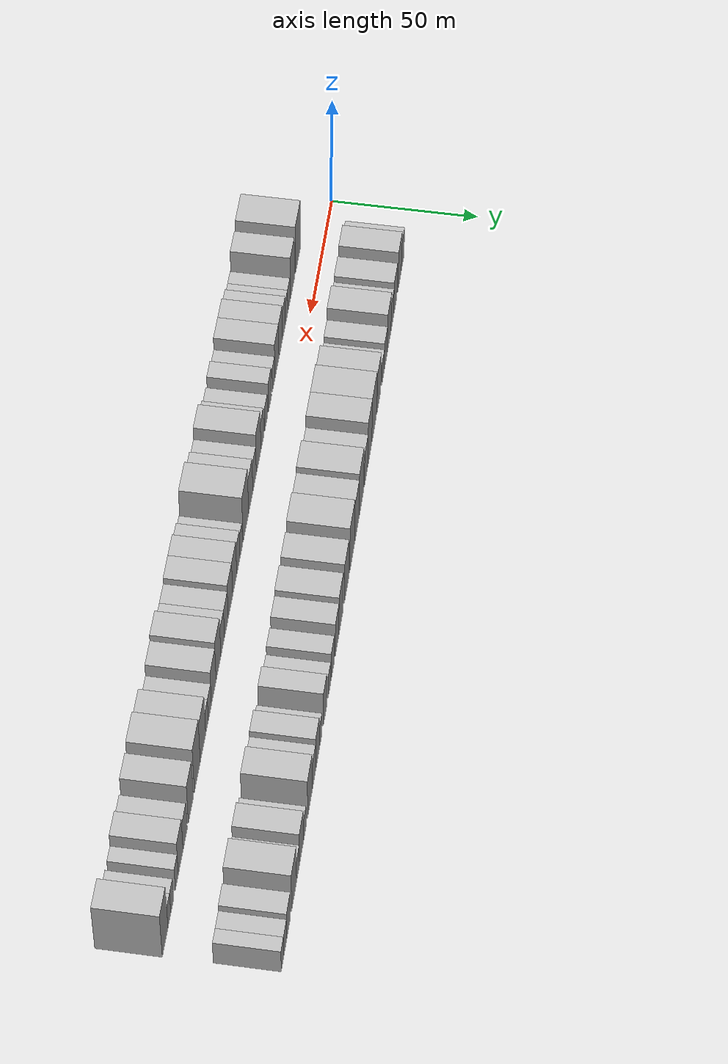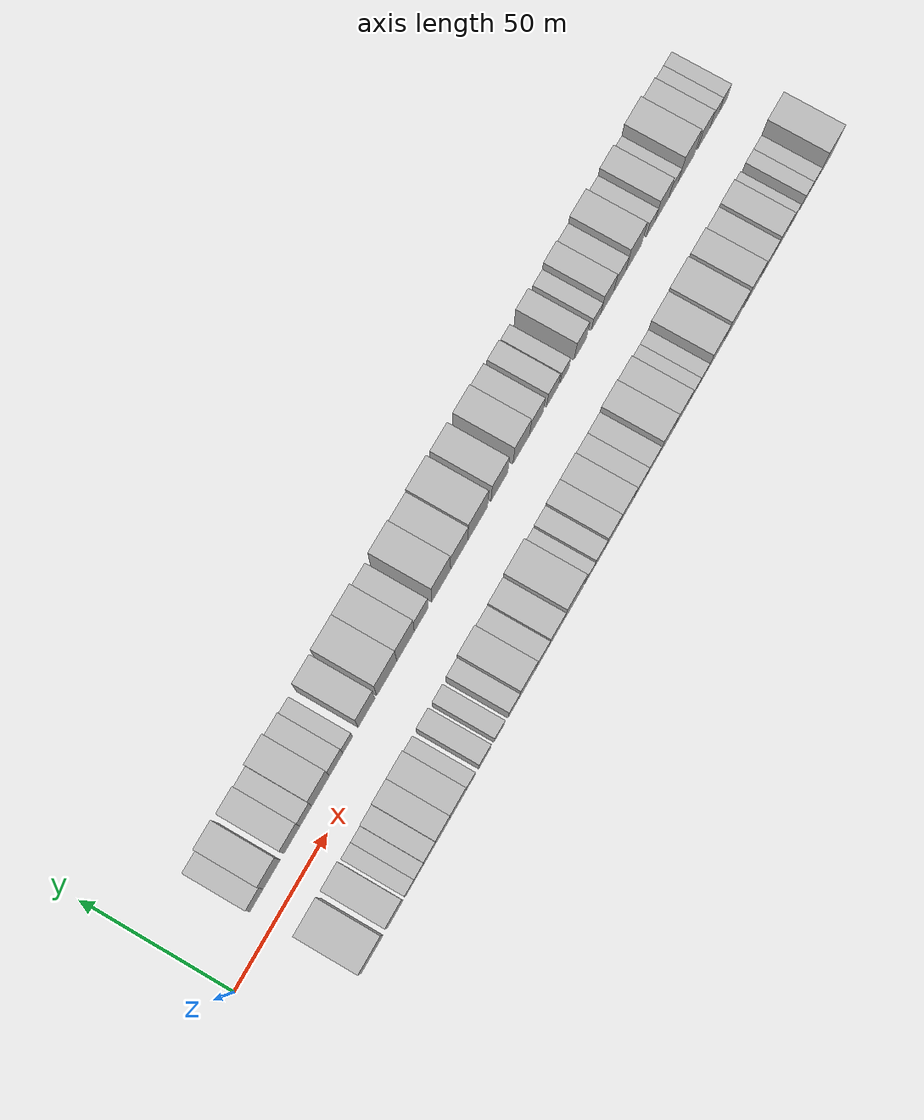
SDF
<sdf version="1.6">
 <world name="default">
  <scene>
   <sky><clouds><speed>12</speed></clouds></sky>
   <ambient>0.4 0.4 0.4 1</ambient>
   <background>0.7 0.7 0.7 1</background>
   <shadows>1</shadows>
  </scene>
  <gravity>0 0 -9.8066</gravity>
  <magnetic_field>6e-06 2.3e-05 -4.2e-05</magnetic_field>
  <physics default="0" name="default_physics" type="ode">
   <ode>
    <solver>
     <type>quick</type>
     <iters>10</iters>
     <sor>1.0</sor>
     <use_dynamic_moi_rescaling>0</use_dynamic_moi_rescaling>
    </solver>
    <constraints>
     <cfm>0</cfm>
     <erp>0.2</erp>
     <contact_max_correcting_vel>100</contact_max_correcting_vel>
     <contact_surface_layer>0.001</contact_surface_layer>
    </constraints>
   </ode>
   <max_step_size>0.004</max_step_size>
   <real_time_factor>1</real_time_factor>
   <real_time_update_rate>250</real_time_update_rate>
  </physics>
  <light name="sun" type="directional">
   <pose>0 0 10 0 0 0</pose>
   <diffuse>0.8 0.8 0.8 1</diffuse>
   <specular>0.2 0.2 0.2 1</specular>
   <attenuation>
    <range>1000</range>
    <constant>0.9</constant>
    <linear>0.01</linear>
    <quadratic>0.001</quadratic>
   </attenuation>
   <direction>-0.5 0.1 -0.9</direction>
  </light>
  <model name="building_1">
   <static>1</static>
   <pose>24.5312 17.5000 0 0.000000 0.000000 1.570796</pose>
   <link name="link">
    <pose>0 0 7.50 0 0 0</pose>
    <collision name="collision"><geometry><box><size>20.0000 7.0624 15.0000</size></box></geometry></collision>
    <visual name="visual">
     <cast_shadows>0</cast_shadows>
     <geometry><box><size>20.0000 7.0624 15.0000</size></box></geometry>
     <material>
      <script>
       <uri>model://HANNAS_wall/materials/scripts</uri>
       <uri>model://HANNAS_wall/materials/textures</uri>
       <name>vrc/HANNAS_wall</name>
      </script>
     </material>
    </visual>
   </link>
  </model>
  <model name="building_2">
   <static>1</static>
   <pose>32.6191 17.5000 0 0.000000 0.000000 1.570796</pose>
   <link name="link">
    <pose>0 0 10.50 0 0 0</pose>
    <collision name="collision"><geometry><box><size>20.0000 9.1133 21.0000</size></box></geometry></collision>
    <visual name="visual">
     <cast_shadows>0</cast_shadows>
     <geometry><box><size>20.0000 9.1133 21.0000</size></box></geometry>
     <material>
      <script>
       <uri>model://HANNAS_wall/materials/scripts</uri>
       <uri>model://HANNAS_wall/materials/textures</uri>
       <name>vrc/HANNAS_wall</name>
      </script>
     </material>
    </visual>
   </link>
  </model>
  <model name="building_3">
   <static>1</static>
   <pose>43.4742 17.5000 0 0.000000 0.000000 1.570796</pose>
   <link name="link">
    <pose>0 0 9.00 0 0 0</pose>
    <collision name="collision"><geometry><box><size>20.0000 8.5970 18.0000</size></box></geometry></collision>
    <visual name="visual">
     <cast_shadows>0</cast_shadows>
     <geometry><box><size>20.0000 8.5970 18.0000</size></box></geometry>
     <material>
      <script>
       <uri>model://HANNAS_wall/materials/scripts</uri>
       <uri>model://HANNAS_wall/materials/textures</uri>
       <name>vrc/HANNAS_wall</name>
      </script>
     </material>
    </visual>
   </link>
  </model>
  <model name="building_4">
   <static>1</static>
   <pose>51.0130 17.5000 0 0.000000 0.000000 1.570796</pose>
   <link name="link">
    <pose>0 0 7.50 0 0 0</pose>
    <collision name="collision"><geometry><box><size>20.0000 6.4806 15.0000</size></box></geometry></collision>
    <visual name="visual">
     <cast_shadows>0</cast_shadows>
     <geometry><box><size>20.0000 6.4806 15.0000</size></box></geometry>
     <material>
      <script>
       <uri>model://HANNAS_wall/materials/scripts</uri>
       <uri>model://HANNAS_wall/materials/textures</uri>
       <name>vrc/HANNAS_wall</name>
      </script>
     </material>
    </visual>
   </link>
  </model>
  <model name="building_5">
   <static>1</static>
   <pose>59.0527 17.5000 0 0.000000 0.000000 1.570796</pose>
   <link name="link">
    <pose>0 0 10.50 0 0 0</pose>
    <collision name="collision"><geometry><box><size>20.0000 9.5987 21.0000</size></box></geometry></collision>
    <visual name="visual">
     <cast_shadows>0</cast_shadows>
     <geometry><box><size>20.0000 9.5987 21.0000</size></box></geometry>
     <material>
      <script>
       <uri>model://HANNAS_wall/materials/scripts</uri>
       <uri>model://HANNAS_wall/materials/textures</uri>
       <name>vrc/HANNAS_wall</name>
      </script>
     </material>
    </visual>
   </link>
  </model>
  <model name="building_6">
   <static>1</static>
   <pose>67.4788 17.5000 0 0.000000 0.000000 1.570796</pose>
   <link name="link">
    <pose>0 0 7.50 0 0 0</pose>
    <collision name="collision"><geometry><box><size>20.0000 7.2534 15.0000</size></box></geometry></collision>
    <visual name="visual">
     <cast_shadows>0</cast_shadows>
     <geometry><box><size>20.0000 7.2534 15.0000</size></box></geometry>
     <material>
      <script>
       <uri>model://HANNAS_wall/materials/scripts</uri>
       <uri>model://HANNAS_wall/materials/textures</uri>
       <name>vrc/HANNAS_wall</name>
      </script>
     </material>
    </visual>
   </link>
  </model>
  <model name="building_7">
   <static>1</static>
   <pose>73.7996 17.5000 0 0.000000 0.000000 1.570796</pose>
   <link name="link">
    <pose>0 0 6.00 0 0 0</pose>
    <collision name="collision"><geometry><box><size>20.0000 5.3883 12.0000</size></box></geometry></collision>
    <visual name="visual">
     <cast_shadows>0</cast_shadows>
     <geometry><box><size>20.0000 5.3883 12.0000</size></box></geometry>
     <material>
      <script>
       <uri>model://HANNAS_wall/materials/scripts</uri>
       <uri>model://HANNAS_wall/materials/textures</uri>
       <name>vrc/HANNAS_wall</name>
      </script>
     </material>
    </visual>
   </link>
  </model>
  <model name="building_8">
   <static>1</static>
   <pose>84.1471 17.5000 0 0.000000 0.000000 1.570796</pose>
   <link name="link">
    <pose>0 0 10.50 0 0 0</pose>
    <collision name="collision"><geometry><box><size>20.0000 9.3068 21.0000</size></box></geometry></collision>
    <visual name="visual">
     <cast_shadows>0</cast_shadows>
     <geometry><box><size>20.0000 9.3068 21.0000</size></box></geometry>
     <material>
      <script>
       <uri>model://HANNAS_wall/materials/scripts</uri>
       <uri>model://HANNAS_wall/materials/textures</uri>
       <name>vrc/HANNAS_wall</name>
      </script>
     </material>
    </visual>
   </link>
  </model>
  <model name="building_9">
   <static>1</static>
   <pose>95.3636 17.5000 0 0.000000 0.000000 1.570796</pose>
   <link name="link">
    <pose>0 0 12.00 0 0 0</pose>
    <collision name="collision"><geometry><box><size>20.0000 11.1262 24.0000</size></box></geometry></collision>
    <visual name="visual">
     <cast_shadows>0</cast_shadows>
     <geometry><box><size>20.0000 11.1262 24.0000</size></box></geometry>
     <material>
      <script>
       <uri>model://HANNAS_wall/materials/scripts</uri>
       <uri>model://HANNAS_wall/materials/textures</uri>
       <name>vrc/HANNAS_wall</name>
      </script>
     </material>
    </visual>
   </link>
  </model>
  <model name="building_10">
   <static>1</static>
   <pose>105.8117 17.5000 0 0.000000 0.000000 1.570796</pose>
   <link name="link">
    <pose>0 0 12.00 0 0 0</pose>
    <collision name="collision"><geometry><box><size>20.0000 9.7699 24.0000</size></box></geometry></collision>
    <visual name="visual">
     <cast_shadows>0</cast_shadows>
     <geometry><box><size>20.0000 9.7699 24.0000</size></box></geometry>
     <material>
      <script>
       <uri>model://HANNAS_wall/materials/scripts</uri>
       <uri>model://HANNAS_wall/materials/textures</uri>
       <name>vrc/HANNAS_wall</name>
      </script>
     </material>
    </visual>
   </link>
  </model>
  <model name="building_11">
   <static>1</static>
   <pose>114.6032 17.5000 0 0.000000 0.000000 1.570796</pose>
   <link name="link">
    <pose>0 0 9.00 0 0 0</pose>
    <collision name="collision"><geometry><box><size>20.0000 7.8132 18.0000</size></box></geometry></collision>
    <visual name="visual">
     <cast_shadows>0</cast_shadows>
     <geometry><box><size>20.0000 7.8132 18.0000</size></box></geometry>
     <material>
      <script>
       <uri>model://HANNAS_wall/materials/scripts</uri>
       <uri>model://HANNAS_wall/materials/textures</uri>
       <name>vrc/HANNAS_wall</name>
      </script>
     </material>
    </visual>
   </link>
  </model>
  <model name="building_12">
   <static>1</static>
   <pose>125.7846 17.5000 0 0.000000 0.000000 1.570796</pose>
   <link name="link">
    <pose>0 0 12.00 0 0 0</pose>
    <collision name="collision"><geometry><box><size>20.0000 10.5496 24.0000</size></box></geometry></collision>
    <visual name="visual">
     <cast_shadows>0</cast_shadows>
     <geometry><box><size>20.0000 10.5496 24.0000</size></box></geometry>
     <material>
      <script>
       <uri>model://HANNAS_wall/materials/scripts</uri>
       <uri>model://HANNAS_wall/materials/textures</uri>
       <name>vrc/HANNAS_wall</name>
      </script>
     </material>
    </visual>
   </link>
  </model>
  <model name="building_13">
   <static>1</static>
   <pose>136.0010 17.5000 0 0.000000 0.000000 1.570796</pose>
   <link name="link">
    <pose>0 0 10.50 0 0 0</pose>
    <collision name="collision"><geometry><box><size>20.0000 9.8832 21.0000</size></box></geometry></collision>
    <visual name="visual">
     <cast_shadows>0</cast_shadows>
     <geometry><box><size>20.0000 9.8832 21.0000</size></box></geometry>
     <material>
      <script>
       <uri>model://HANNAS_wall/materials/scripts</uri>
       <uri>model://HANNAS_wall/materials/textures</uri>
       <name>vrc/HANNAS_wall</name>
      </script>
     </material>
    </visual>
   </link>
  </model>
  <model name="building_14">
   <static>1</static>
   <pose>146.5517 17.5000 0 0.000000 0.000000 1.570796</pose>
   <link name="link">
    <pose>0 0 12.00 0 0 0</pose>
    <collision name="collision"><geometry><box><size>20.0000 11.2180 24.0000</size></box></geometry></collision>
    <visual name="visual">
     <cast_shadows>0</cast_shadows>
     <geometry><box><size>20.0000 11.2180 24.0000</size></box></geometry>
     <material>
      <script>
       <uri>model://HANNAS_wall/materials/scripts</uri>
       <uri>model://HANNAS_wall/materials/textures</uri>
       <name>vrc/HANNAS_wall</name>
      </script>
     </material>
    </visual>
   </link>
  </model>
  <model name="building_15">
   <static>1</static>
   <pose>158.9572 17.5000 0 0.000000 0.000000 1.570796</pose>
   <link name="link">
    <pose>0 0 10.50 0 0 0</pose>
    <collision name="collision"><geometry><box><size>20.0000 9.5930 21.0000</size></box></geometry></collision>
    <visual name="visual">
     <cast_shadows>0</cast_shadows>
     <geometry><box><size>20.0000 9.5930 21.0000</size></box></geometry>
     <material>
      <script>
       <uri>model://HANNAS_wall/materials/scripts</uri>
       <uri>model://HANNAS_wall/materials/textures</uri>
       <name>vrc/HANNAS_wall</name>
      </script>
     </material>
    </visual>
   </link>
  </model>
  <model name="building_16">
   <static>1</static>
   <pose>171.5148 17.5000 0 0.000000 0.000000 1.570796</pose>
   <link name="link">
    <pose>0 0 10.50 0 0 0</pose>
    <collision name="collision"><geometry><box><size>20.0000 9.5221 21.0000</size></box></geometry></collision>
    <visual name="visual">
     <cast_shadows>0</cast_shadows>
     <geometry><box><size>20.0000 9.5221 21.0000</size></box></geometry>
     <material>
      <script>
       <uri>model://HANNAS_wall/materials/scripts</uri>
       <uri>model://HANNAS_wall/materials/textures</uri>
       <name>vrc/HANNAS_wall</name>
      </script>
     </material>
    </visual>
   </link>
  </model>
  <model name="building_17">
   <static>1</static>
   <pose>180.2313 17.5000 0 0.000000 0.000000 1.570796</pose>
   <link name="link">
    <pose>0 0 9.00 0 0 0</pose>
    <collision name="collision"><geometry><box><size>20.0000 7.9109 18.0000</size></box></geometry></collision>
    <visual name="visual">
     <cast_shadows>0</cast_shadows>
     <geometry><box><size>20.0000 7.9109 18.0000</size></box></geometry>
     <material>
      <script>
       <uri>model://HANNAS_wall/materials/scripts</uri>
       <uri>model://HANNAS_wall/materials/textures</uri>
       <name>vrc/HANNAS_wall</name>
      </script>
     </material>
    </visual>
   </link>
  </model>
  <model name="building_18">
   <static>1</static>
   <pose>189.6379 17.5000 0 0.000000 0.000000 1.570796</pose>
   <link name="link">
    <pose>0 0 7.50 0 0 0</pose>
    <collision name="collision"><geometry><box><size>20.0000 6.9022 15.0000</size></box></geometry></collision>
    <visual name="visual">
     <cast_shadows>0</cast_shadows>
     <geometry><box><size>20.0000 6.9022 15.0000</size></box></geometry>
     <material>
      <script>
       <uri>model://HANNAS_wall/materials/scripts</uri>
       <uri>model://HANNAS_wall/materials/textures</uri>
       <name>vrc/HANNAS_wall</name>
      </script>
     </material>
    </visual>
   </link>
  </model>
  <model name="building_19">
   <static>1</static>
   <pose>196.7116 17.5000 0 0.000000 0.000000 1.570796</pose>
   <link name="link">
    <pose>0 0 6.00 0 0 0</pose>
    <collision name="collision"><geometry><box><size>20.0000 5.2452 12.0000</size></box></geometry></collision>
    <visual name="visual">
     <cast_shadows>0</cast_shadows>
     <geometry><box><size>20.0000 5.2452 12.0000</size></box></geometry>
     <material>
      <script>
       <uri>model://HANNAS_wall/materials/scripts</uri>
       <uri>model://HANNAS_wall/materials/textures</uri>
       <name>vrc/HANNAS_wall</name>
      </script>
     </material>
    </visual>
   </link>
  </model>
  <model name="building_20">
   <static>1</static>
   <pose>205.9429 17.5000 0 0.000000 0.000000 1.570796</pose>
   <link name="link">
    <pose>0 0 9.00 0 0 0</pose>
    <collision name="collision"><geometry><box><size>20.0000 7.2174 18.0000</size></box></geometry></collision>
    <visual name="visual">
     <cast_shadows>0</cast_shadows>
     <geometry><box><size>20.0000 7.2174 18.0000</size></box></geometry>
     <material>
      <script>
       <uri>model://HANNAS_wall/materials/scripts</uri>
       <uri>model://HANNAS_wall/materials/textures</uri>
       <name>vrc/HANNAS_wall</name>
      </script>
     </material>
    </visual>
   </link>
  </model>
  <model name="building_21">
   <static>1</static>
   <pose>215.3597 17.5000 0 0.000000 0.000000 1.570796</pose>
   <link name="link">
    <pose>0 0 6.00 0 0 0</pose>
    <collision name="collision"><geometry><box><size>20.0000 5.6162 12.0000</size></box></geometry></collision>
    <visual name="visual">
     <cast_shadows>0</cast_shadows>
     <geometry><box><size>20.0000 5.6162 12.0000</size></box></geometry>
     <material>
      <script>
       <uri>model://HANNAS_wall/materials/scripts</uri>
       <uri>model://HANNAS_wall/materials/textures</uri>
       <name>vrc/HANNAS_wall</name>
      </script>
     </material>
    </visual>
   </link>
  </model>
  <model name="building_22">
   <static>1</static>
   <pose>221.9842 17.5000 0 0.000000 0.000000 1.570796</pose>
   <link name="link">
    <pose>0 0 9.00 0 0 0</pose>
    <collision name="collision"><geometry><box><size>20.0000 7.6328 18.0000</size></box></geometry></collision>
    <visual name="visual">
     <cast_shadows>0</cast_shadows>
     <geometry><box><size>20.0000 7.6328 18.0000</size></box></geometry>
     <material>
      <script>
       <uri>model://HANNAS_wall/materials/scripts</uri>
       <uri>model://HANNAS_wall/materials/textures</uri>
       <name>vrc/HANNAS_wall</name>
      </script>
     </material>
    </visual>
   </link>
  </model>
  <model name="building_23">
   <static>1</static>
   <pose>229.3829 17.5000 0 0.000000 0.000000 1.570796</pose>
   <link name="link">
    <pose>0 0 7.50 0 0 0</pose>
    <collision name="collision"><geometry><box><size>20.0000 7.1647 15.0000</size></box></geometry></collision>
    <visual name="visual">
     <cast_shadows>0</cast_shadows>
     <geometry><box><size>20.0000 7.1647 15.0000</size></box></geometry>
     <material>
      <script>
       <uri>model://HANNAS_wall/materials/scripts</uri>
       <uri>model://HANNAS_wall/materials/textures</uri>
       <name>vrc/HANNAS_wall</name>
      </script>
     </material>
    </visual>
   </link>
  </model>
  <model name="building_24">
   <static>1</static>
   <pose>237.7203 17.5000 0 0.000000 0.000000 1.570796</pose>
   <link name="link">
    <pose>0 0 10.50 0 0 0</pose>
    <collision name="collision"><geometry><box><size>20.0000 9.5099 21.0000</size></box></geometry></collision>
    <visual name="visual">
     <cast_shadows>0</cast_shadows>
     <geometry><box><size>20.0000 9.5099 21.0000</size></box></geometry>
     <material>
      <script>
       <uri>model://HANNAS_wall/materials/scripts</uri>
       <uri>model://HANNAS_wall/materials/textures</uri>
       <name>vrc/HANNAS_wall</name>
      </script>
     </material>
    </visual>
   </link>
  </model>
  <model name="building_25">
   <static>1</static>
   <pose>248.1216 17.5000 0 0.000000 0.000000 1.570796</pose>
   <link name="link">
    <pose>0 0 6.00 0 0 0</pose>
    <collision name="collision"><geometry><box><size>20.0000 5.2927 12.0000</size></box></geometry></collision>
    <visual name="visual">
     <cast_shadows>0</cast_shadows>
     <geometry><box><size>20.0000 5.2927 12.0000</size></box></geometry>
     <material>
      <script>
       <uri>model://HANNAS_wall/materials/scripts</uri>
       <uri>model://HANNAS_wall/materials/textures</uri>
       <name>vrc/HANNAS_wall</name>
      </script>
     </material>
    </visual>
   </link>
  </model>
  <model name="building_26">
   <static>1</static>
   <pose>254.8613 17.5000 0 0.000000 0.000000 1.570796</pose>
   <link name="link">
    <pose>0 0 9.00 0 0 0</pose>
    <collision name="collision"><geometry><box><size>20.0000 8.1869 18.0000</size></box></geometry></collision>
    <visual name="visual">
     <cast_shadows>0</cast_shadows>
     <geometry><box><size>20.0000 8.1869 18.0000</size></box></geometry>
     <material>
      <script>
       <uri>model://HANNAS_wall/materials/scripts</uri>
       <uri>model://HANNAS_wall/materials/textures</uri>
       <name>vrc/HANNAS_wall</name>
      </script>
     </material>
    </visual>
   </link>
  </model>
  <model name="building_27">
   <static>1</static>
   <pose>261.8539 17.5000 0 0.000000 0.000000 1.570796</pose>
   <link name="link">
    <pose>0 0 6.00 0 0 0</pose>
    <collision name="collision"><geometry><box><size>20.0000 5.7983 12.0000</size></box></geometry></collision>
    <visual name="visual">
     <cast_shadows>0</cast_shadows>
     <geometry><box><size>20.0000 5.7983 12.0000</size></box></geometry>
     <material>
      <script>
       <uri>model://HANNAS_wall/materials/scripts</uri>
       <uri>model://HANNAS_wall/materials/textures</uri>
       <name>vrc/HANNAS_wall</name>
      </script>
     </material>
    </visual>
   </link>
  </model>
  <model name="building_28">
   <static>1</static>
   <pose>269.6706 17.5000 0 0.000000 0.000000 1.570796</pose>
   <link name="link">
    <pose>0 0 10.50 0 0 0</pose>
    <collision name="collision"><geometry><box><size>20.0000 9.8350 21.0000</size></box></geometry></collision>
    <visual name="visual">
     <cast_shadows>0</cast_shadows>
     <geometry><box><size>20.0000 9.8350 21.0000</size></box></geometry>
     <material>
      <script>
       <uri>model://HANNAS_wall/materials/scripts</uri>
       <uri>model://HANNAS_wall/materials/textures</uri>
       <name>vrc/HANNAS_wall</name>
      </script>
     </material>
    </visual>
   </link>
  </model>
  <model name="building_29">
   <static>1</static>
   <pose>280.2941 17.5000 0 0.000000 0.000000 1.570796</pose>
   <link name="link">
    <pose>0 0 7.50 0 0 0</pose>
    <collision name="collision"><geometry><box><size>20.0000 7.4121 15.0000</size></box></geometry></collision>
    <visual name="visual">
     <cast_shadows>0</cast_shadows>
     <geometry><box><size>20.0000 7.4121 15.0000</size></box></geometry>
     <material>
      <script>
       <uri>model://HANNAS_wall/materials/scripts</uri>
       <uri>model://HANNAS_wall/materials/textures</uri>
       <name>vrc/HANNAS_wall</name>
      </script>
     </material>
    </visual>
   </link>
  </model>
  <model name="building_30">
   <static>1</static>
   <pose>286.9088 17.5000 0 0.000000 0.000000 1.570796</pose>
   <link name="link">
    <pose>0 0 6.00 0 0 0</pose>
    <collision name="collision"><geometry><box><size>20.0000 5.8172 12.0000</size></box></geometry></collision>
    <visual name="visual">
     <cast_shadows>0</cast_shadows>
     <geometry><box><size>20.0000 5.8172 12.0000</size></box></geometry>
     <material>
      <script>
       <uri>model://HANNAS_wall/materials/scripts</uri>
       <uri>model://HANNAS_wall/materials/textures</uri>
       <name>vrc/HANNAS_wall</name>
      </script>
     </material>
    </visual>
   </link>
  </model>
  <model name="building_31">
   <static>1</static>
   <pose>292.2611 17.5000 0 0.000000 0.000000 1.570796</pose>
   <link name="link">
    <pose>0 0 6.00 0 0 0</pose>
    <collision name="collision"><geometry><box><size>20.0000 4.8874 12.0000</size></box></geometry></collision>
    <visual name="visual">
     <cast_shadows>0</cast_shadows>
     <geometry><box><size>20.0000 4.8874 12.0000</size></box></geometry>
     <material>
      <script>
       <uri>model://HANNAS_wall/materials/scripts</uri>
       <uri>model://HANNAS_wall/materials/textures</uri>
       <name>vrc/HANNAS_wall</name>
      </script>
     </material>
    </visual>
   </link>
  </model>
  <model name="building_32">
   <static>1</static>
   <pose>27.9075 -17.5000 0 0.000000 0.000000 1.570796</pose>
   <link name="link">
    <pose>0 0 12.00 0 0 0</pose>
    <collision name="collision"><geometry><box><size>20.0000 11.8150 24.0000</size></box></geometry></collision>
    <visual name="visual">
     <cast_shadows>0</cast_shadows>
     <geometry><box><size>20.0000 11.8150 24.0000</size></box></geometry>
     <material>
      <script>
       <uri>model://HANNAS_wall/materials/scripts</uri>
       <uri>model://HANNAS_wall/materials/textures</uri>
       <name>vrc/HANNAS_wall</name>
      </script>
     </material>
    </visual>
   </link>
  </model>
  <model name="building_33">
   <static>1</static>
   <pose>40.2656 -17.5000 0 0.000000 0.000000 1.570796</pose>
   <link name="link">
    <pose>0 0 10.50 0 0 0</pose>
    <collision name="collision"><geometry><box><size>20.0000 8.9013 21.0000</size></box></geometry></collision>
    <visual name="visual">
     <cast_shadows>0</cast_shadows>
     <geometry><box><size>20.0000 8.9013 21.0000</size></box></geometry>
     <material>
      <script>
       <uri>model://HANNAS_wall/materials/scripts</uri>
       <uri>model://HANNAS_wall/materials/textures</uri>
       <name>vrc/HANNAS_wall</name>
      </script>
     </material>
    </visual>
   </link>
  </model>
  <model name="building_34">
   <static>1</static>
   <pose>48.3265 -17.5000 0 0.000000 0.000000 1.570796</pose>
   <link name="link">
    <pose>0 0 6.00 0 0 0</pose>
    <collision name="collision"><geometry><box><size>20.0000 5.2206 12.0000</size></box></geometry></collision>
    <visual name="visual">
     <cast_shadows>0</cast_shadows>
     <geometry><box><size>20.0000 5.2206 12.0000</size></box></geometry>
     <material>
      <script>
       <uri>model://HANNAS_wall/materials/scripts</uri>
       <uri>model://HANNAS_wall/materials/textures</uri>
       <name>vrc/HANNAS_wall</name>
      </script>
     </material>
    </visual>
   </link>
  </model>
  <model name="building_35">
   <static>1</static>
   <pose>53.4964 -17.5000 0 0.000000 0.000000 1.570796</pose>
   <link name="link">
    <pose>0 0 6.00 0 0 0</pose>
    <collision name="collision"><geometry><box><size>20.0000 5.1192 12.0000</size></box></geometry></collision>
    <visual name="visual">
     <cast_shadows>0</cast_shadows>
     <geometry><box><size>20.0000 5.1192 12.0000</size></box></geometry>
     <material>
      <script>
       <uri>model://HANNAS_wall/materials/scripts</uri>
       <uri>model://HANNAS_wall/materials/textures</uri>
       <name>vrc/HANNAS_wall</name>
      </script>
     </material>
    </visual>
   </link>
  </model>
  <model name="building_36">
   <static>1</static>
   <pose>59.2746 -17.5000 0 0.000000 0.000000 1.570796</pose>
   <link name="link">
    <pose>0 0 7.50 0 0 0</pose>
    <collision name="collision"><geometry><box><size>20.0000 6.4372 15.0000</size></box></geometry></collision>
    <visual name="visual">
     <cast_shadows>0</cast_shadows>
     <geometry><box><size>20.0000 6.4372 15.0000</size></box></geometry>
     <material>
      <script>
       <uri>model://HANNAS_wall/materials/scripts</uri>
       <uri>model://HANNAS_wall/materials/textures</uri>
       <name>vrc/HANNAS_wall</name>
      </script>
     </material>
    </visual>
   </link>
  </model>
  <model name="building_37">
   <static>1</static>
   <pose>66.4505 -17.5000 0 0.000000 0.000000 1.570796</pose>
   <link name="link">
    <pose>0 0 9.00 0 0 0</pose>
    <collision name="collision"><geometry><box><size>20.0000 7.9146 18.0000</size></box></geometry></collision>
    <visual name="visual">
     <cast_shadows>0</cast_shadows>
     <geometry><box><size>20.0000 7.9146 18.0000</size></box></geometry>
     <material>
      <script>
       <uri>model://HANNAS_wall/materials/scripts</uri>
       <uri>model://HANNAS_wall/materials/textures</uri>
       <name>vrc/HANNAS_wall</name>
      </script>
     </material>
    </visual>
   </link>
  </model>
  <model name="building_38">
   <static>1</static>
   <pose>74.7736 -17.5000 0 0.000000 0.000000 1.570796</pose>
   <link name="link">
    <pose>0 0 9.00 0 0 0</pose>
    <collision name="collision"><geometry><box><size>20.0000 8.7315 18.0000</size></box></geometry></collision>
    <visual name="visual">
     <cast_shadows>0</cast_shadows>
     <geometry><box><size>20.0000 8.7315 18.0000</size></box></geometry>
     <material>
      <script>
       <uri>model://HANNAS_wall/materials/scripts</uri>
       <uri>model://HANNAS_wall/materials/textures</uri>
       <name>vrc/HANNAS_wall</name>
      </script>
     </material>
    </visual>
   </link>
  </model>
  <model name="building_39">
   <static>1</static>
   <pose>81.7462 -17.5000 0 0.000000 0.000000 1.570796</pose>
   <link name="link">
    <pose>0 0 6.00 0 0 0</pose>
    <collision name="collision"><geometry><box><size>20.0000 5.2136 12.0000</size></box></geometry></collision>
    <visual name="visual">
     <cast_shadows>0</cast_shadows>
     <geometry><box><size>20.0000 5.2136 12.0000</size></box></geometry>
     <material>
      <script>
       <uri>model://HANNAS_wall/materials/scripts</uri>
       <uri>model://HANNAS_wall/materials/textures</uri>
       <name>vrc/HANNAS_wall</name>
      </script>
     </material>
    </visual>
   </link>
  </model>
  <model name="building_40">
   <static>1</static>
   <pose>89.6417 -17.5000 0 0.000000 0.000000 1.570796</pose>
   <link name="link">
    <pose>0 0 7.50 0 0 0</pose>
    <collision name="collision"><geometry><box><size>20.0000 6.5774 15.0000</size></box></geometry></collision>
    <visual name="visual">
     <cast_shadows>0</cast_shadows>
     <geometry><box><size>20.0000 6.5774 15.0000</size></box></geometry>
     <material>
      <script>
       <uri>model://HANNAS_wall/materials/scripts</uri>
       <uri>model://HANNAS_wall/materials/textures</uri>
       <name>vrc/HANNAS_wall</name>
      </script>
     </material>
    </visual>
   </link>
  </model>
  <model name="building_41">
   <static>1</static>
   <pose>97.8533 -17.5000 0 0.000000 0.000000 1.570796</pose>
   <link name="link">
    <pose>0 0 6.00 0 0 0</pose>
    <collision name="collision"><geometry><box><size>20.0000 5.8459 12.0000</size></box></geometry></collision>
    <visual name="visual">
     <cast_shadows>0</cast_shadows>
     <geometry><box><size>20.0000 5.8459 12.0000</size></box></geometry>
     <material>
      <script>
       <uri>model://HANNAS_wall/materials/scripts</uri>
       <uri>model://HANNAS_wall/materials/textures</uri>
       <name>vrc/HANNAS_wall</name>
      </script>
     </material>
    </visual>
   </link>
  </model>
  <model name="building_42">
   <static>1</static>
   <pose>105.8094 -17.5000 0 0.000000 0.000000 1.570796</pose>
   <link name="link">
    <pose>0 0 7.50 0 0 0</pose>
    <collision name="collision"><geometry><box><size>20.0000 6.0663 15.0000</size></box></geometry></collision>
    <visual name="visual">
     <cast_shadows>0</cast_shadows>
     <geometry><box><size>20.0000 6.0663 15.0000</size></box></geometry>
     <material>
      <script>
       <uri>model://HANNAS_wall/materials/scripts</uri>
       <uri>model://HANNAS_wall/materials/textures</uri>
       <name>vrc/HANNAS_wall</name>
      </script>
     </material>
    </visual>
   </link>
  </model>
  <model name="building_43">
   <static>1</static>
   <pose>113.6102 -17.5000 0 0.000000 0.000000 1.570796</pose>
   <link name="link">
    <pose>0 0 10.50 0 0 0</pose>
    <collision name="collision"><geometry><box><size>20.0000 9.5353 21.0000</size></box></geometry></collision>
    <visual name="visual">
     <cast_shadows>0</cast_shadows>
     <geometry><box><size>20.0000 9.5353 21.0000</size></box></geometry>
     <material>
      <script>
       <uri>model://HANNAS_wall/materials/scripts</uri>
       <uri>model://HANNAS_wall/materials/textures</uri>
       <name>vrc/HANNAS_wall</name>
      </script>
     </material>
    </visual>
   </link>
  </model>
  <model name="building_44">
   <static>1</static>
   <pose>122.0131 -17.5000 0 0.000000 0.000000 1.570796</pose>
   <link name="link">
    <pose>0 0 7.50 0 0 0</pose>
    <collision name="collision"><geometry><box><size>20.0000 7.2705 15.0000</size></box></geometry></collision>
    <visual name="visual">
     <cast_shadows>0</cast_shadows>
     <geometry><box><size>20.0000 7.2705 15.0000</size></box></geometry>
     <material>
      <script>
       <uri>model://HANNAS_wall/materials/scripts</uri>
       <uri>model://HANNAS_wall/materials/textures</uri>
       <name>vrc/HANNAS_wall</name>
      </script>
     </material>
    </visual>
   </link>
  </model>
  <model name="building_45">
   <static>1</static>
   <pose>129.9166 -17.5000 0 0.000000 0.000000 1.570796</pose>
   <link name="link">
    <pose>0 0 9.00 0 0 0</pose>
    <collision name="collision"><geometry><box><size>20.0000 8.5366 18.0000</size></box></geometry></collision>
    <visual name="visual">
     <cast_shadows>0</cast_shadows>
     <geometry><box><size>20.0000 8.5366 18.0000</size></box></geometry>
     <material>
      <script>
       <uri>model://HANNAS_wall/materials/scripts</uri>
       <uri>model://HANNAS_wall/materials/textures</uri>
       <name>vrc/HANNAS_wall</name>
      </script>
     </material>
    </visual>
   </link>
  </model>
  <model name="building_46">
   <static>1</static>
   <pose>139.8355 -17.5000 0 0.000000 0.000000 1.570796</pose>
   <link name="link">
    <pose>0 0 12.00 0 0 0</pose>
    <collision name="collision"><geometry><box><size>20.0000 11.3011 24.0000</size></box></geometry></collision>
    <visual name="visual">
     <cast_shadows>0</cast_shadows>
     <geometry><box><size>20.0000 11.3011 24.0000</size></box></geometry>
     <material>
      <script>
       <uri>model://HANNAS_wall/materials/scripts</uri>
       <uri>model://HANNAS_wall/materials/textures</uri>
       <name>vrc/HANNAS_wall</name>
      </script>
     </material>
    </visual>
   </link>
  </model>
  <model name="building_47">
   <static>1</static>
   <pose>149.0200 -17.5000 0 0.000000 0.000000 1.570796</pose>
   <link name="link">
    <pose>0 0 6.00 0 0 0</pose>
    <collision name="collision"><geometry><box><size>20.0000 5.0681 12.0000</size></box></geometry></collision>
    <visual name="visual">
     <cast_shadows>0</cast_shadows>
     <geometry><box><size>20.0000 5.0681 12.0000</size></box></geometry>
     <material>
      <script>
       <uri>model://HANNAS_wall/materials/scripts</uri>
       <uri>model://HANNAS_wall/materials/textures</uri>
       <name>vrc/HANNAS_wall</name>
      </script>
     </material>
    </visual>
   </link>
  </model>
  <model name="building_48">
   <static>1</static>
   <pose>154.8250 -17.5000 0 0.000000 0.000000 1.570796</pose>
   <link name="link">
    <pose>0 0 7.50 0 0 0</pose>
    <collision name="collision"><geometry><box><size>20.0000 6.5418 15.0000</size></box></geometry></collision>
    <visual name="visual">
     <cast_shadows>0</cast_shadows>
     <geometry><box><size>20.0000 6.5418 15.0000</size></box></geometry>
     <material>
      <script>
       <uri>model://HANNAS_wall/materials/scripts</uri>
       <uri>model://HANNAS_wall/materials/textures</uri>
       <name>vrc/HANNAS_wall</name>
      </script>
     </material>
    </visual>
   </link>
  </model>
  <model name="building_49">
   <static>1</static>
   <pose>162.0627 -17.5000 0 0.000000 0.000000 1.570796</pose>
   <link name="link">
    <pose>0 0 9.00 0 0 0</pose>
    <collision name="collision"><geometry><box><size>20.0000 7.9335 18.0000</size></box></geometry></collision>
    <visual name="visual">
     <cast_shadows>0</cast_shadows>
     <geometry><box><size>20.0000 7.9335 18.0000</size></box></geometry>
     <material>
      <script>
       <uri>model://HANNAS_wall/materials/scripts</uri>
       <uri>model://HANNAS_wall/materials/textures</uri>
       <name>vrc/HANNAS_wall</name>
      </script>
     </material>
    </visual>
   </link>
  </model>
  <model name="building_50">
   <static>1</static>
   <pose>170.4033 -17.5000 0 0.000000 0.000000 1.570796</pose>
   <link name="link">
    <pose>0 0 9.00 0 0 0</pose>
    <collision name="collision"><geometry><box><size>20.0000 8.7477 18.0000</size></box></geometry></collision>
    <visual name="visual">
     <cast_shadows>0</cast_shadows>
     <geometry><box><size>20.0000 8.7477 18.0000</size></box></geometry>
     <material>
      <script>
       <uri>model://HANNAS_wall/materials/scripts</uri>
       <uri>model://HANNAS_wall/materials/textures</uri>
       <name>vrc/HANNAS_wall</name>
      </script>
     </material>
    </visual>
   </link>
  </model>
  <model name="building_51">
   <static>1</static>
   <pose>178.4090 -17.5000 0 0.000000 0.000000 1.570796</pose>
   <link name="link">
    <pose>0 0 7.50 0 0 0</pose>
    <collision name="collision"><geometry><box><size>20.0000 7.2639 15.0000</size></box></geometry></collision>
    <visual name="visual">
     <cast_shadows>0</cast_shadows>
     <geometry><box><size>20.0000 7.2639 15.0000</size></box></geometry>
     <material>
      <script>
       <uri>model://HANNAS_wall/materials/scripts</uri>
       <uri>model://HANNAS_wall/materials/textures</uri>
       <name>vrc/HANNAS_wall</name>
      </script>
     </material>
    </visual>
   </link>
  </model>
  <model name="building_52">
   <static>1</static>
   <pose>185.5512 -17.5000 0 0.000000 0.000000 1.570796</pose>
   <link name="link">
    <pose>0 0 7.50 0 0 0</pose>
    <collision name="collision"><geometry><box><size>20.0000 7.0205 15.0000</size></box></geometry></collision>
    <visual name="visual">
     <cast_shadows>0</cast_shadows>
     <geometry><box><size>20.0000 7.0205 15.0000</size></box></geometry>
     <material>
      <script>
       <uri>model://HANNAS_wall/materials/scripts</uri>
       <uri>model://HANNAS_wall/materials/textures</uri>
       <name>vrc/HANNAS_wall</name>
      </script>
     </material>
    </visual>
   </link>
  </model>
  <model name="building_53">
   <static>1</static>
   <pose>193.5897 -17.5000 0 0.000000 0.000000 1.570796</pose>
   <link name="link">
    <pose>0 0 10.50 0 0 0</pose>
    <collision name="collision"><geometry><box><size>20.0000 9.0563 21.0000</size></box></geometry></collision>
    <visual name="visual">
     <cast_shadows>0</cast_shadows>
     <geometry><box><size>20.0000 9.0563 21.0000</size></box></geometry>
     <material>
      <script>
       <uri>model://HANNAS_wall/materials/scripts</uri>
       <uri>model://HANNAS_wall/materials/textures</uri>
       <name>vrc/HANNAS_wall</name>
      </script>
     </material>
    </visual>
   </link>
  </model>
  <model name="building_54">
   <static>1</static>
   <pose>202.5718 -17.5000 0 0.000000 0.000000 1.570796</pose>
   <link name="link">
    <pose>0 0 9.00 0 0 0</pose>
    <collision name="collision"><geometry><box><size>20.0000 8.9078 18.0000</size></box></geometry></collision>
    <visual name="visual">
     <cast_shadows>0</cast_shadows>
     <geometry><box><size>20.0000 8.9078 18.0000</size></box></geometry>
     <material>
      <script>
       <uri>model://HANNAS_wall/materials/scripts</uri>
       <uri>model://HANNAS_wall/materials/textures</uri>
       <name>vrc/HANNAS_wall</name>
      </script>
     </material>
    </visual>
   </link>
  </model>
  <model name="building_55">
   <static>1</static>
   <pose>209.9312 -17.5000 0 0.000000 0.000000 1.570796</pose>
   <link name="link">
    <pose>0 0 6.00 0 0 0</pose>
    <collision name="collision"><geometry><box><size>20.0000 5.8110 12.0000</size></box></geometry></collision>
    <visual name="visual">
     <cast_shadows>0</cast_shadows>
     <geometry><box><size>20.0000 5.8110 12.0000</size></box></geometry>
     <material>
      <script>
       <uri>model://HANNAS_wall/materials/scripts</uri>
       <uri>model://HANNAS_wall/materials/textures</uri>
       <name>vrc/HANNAS_wall</name>
      </script>
     </material>
    </visual>
   </link>
  </model>
  <model name="building_56">
   <static>1</static>
   <pose>215.2732 -17.5000 0 0.000000 0.000000 1.570796</pose>
   <link name="link">
    <pose>0 0 6.00 0 0 0</pose>
    <collision name="collision"><geometry><box><size>20.0000 4.8730 12.0000</size></box></geometry></collision>
    <visual name="visual">
     <cast_shadows>0</cast_shadows>
     <geometry><box><size>20.0000 4.8730 12.0000</size></box></geometry>
     <material>
      <script>
       <uri>model://HANNAS_wall/materials/scripts</uri>
       <uri>model://HANNAS_wall/materials/textures</uri>
       <name>vrc/HANNAS_wall</name>
      </script>
     </material>
    </visual>
   </link>
  </model>
  <model name="building_57">
   <static>1</static>
   <pose>222.7417 -17.5000 0 0.000000 0.000000 1.570796</pose>
   <link name="link">
    <pose>0 0 10.50 0 0 0</pose>
    <collision name="collision"><geometry><box><size>20.0000 10.0641 21.0000</size></box></geometry></collision>
    <visual name="visual">
     <cast_shadows>0</cast_shadows>
     <geometry><box><size>20.0000 10.0641 21.0000</size></box></geometry>
     <material>
      <script>
       <uri>model://HANNAS_wall/materials/scripts</uri>
       <uri>model://HANNAS_wall/materials/textures</uri>
       <name>vrc/HANNAS_wall</name>
      </script>
     </material>
    </visual>
   </link>
  </model>
  <model name="building_58">
   <static>1</static>
   <pose>233.1329 -17.5000 0 0.000000 0.000000 1.570796</pose>
   <link name="link">
    <pose>0 0 12.00 0 0 0</pose>
    <collision name="collision"><geometry><box><size>20.0000 10.7182 24.0000</size></box></geometry></collision>
    <visual name="visual">
     <cast_shadows>0</cast_shadows>
     <geometry><box><size>20.0000 10.7182 24.0000</size></box></geometry>
     <material>
      <script>
       <uri>model://HANNAS_wall/materials/scripts</uri>
       <uri>model://HANNAS_wall/materials/textures</uri>
       <name>vrc/HANNAS_wall</name>
      </script>
     </material>
    </visual>
   </link>
  </model>
  <model name="building_59">
   <static>1</static>
   <pose>244.9473 -17.5000 0 0.000000 0.000000 1.570796</pose>
   <link name="link">
    <pose>0 0 10.50 0 0 0</pose>
    <collision name="collision"><geometry><box><size>20.0000 8.9107 21.0000</size></box></geometry></collision>
    <visual name="visual">
     <cast_shadows>0</cast_shadows>
     <geometry><box><size>20.0000 8.9107 21.0000</size></box></geometry>
     <material>
      <script>
       <uri>model://HANNAS_wall/materials/scripts</uri>
       <uri>model://HANNAS_wall/materials/textures</uri>
       <name>vrc/HANNAS_wall</name>
      </script>
     </material>
    </visual>
   </link>
  </model>
  <model name="building_60">
   <static>1</static>
   <pose>255.1307 -17.5000 0 0.000000 0.000000 1.570796</pose>
   <link name="link">
    <pose>0 0 7.50 0 0 0</pose>
    <collision name="collision"><geometry><box><size>20.0000 7.4562 15.0000</size></box></geometry></collision>
    <visual name="visual">
     <cast_shadows>0</cast_shadows>
     <geometry><box><size>20.0000 7.4562 15.0000</size></box></geometry>
     <material>
      <script>
       <uri>model://HANNAS_wall/materials/scripts</uri>
       <uri>model://HANNAS_wall/materials/textures</uri>
       <name>vrc/HANNAS_wall</name>
      </script>
     </material>
    </visual>
   </link>
  </model>
  <model name="building_61">
   <static>1</static>
   <pose>263.0437 -17.5000 0 0.000000 0.000000 1.570796</pose>
   <link name="link">
    <pose>0 0 9.00 0 0 0</pose>
    <collision name="collision"><geometry><box><size>20.0000 8.3698 18.0000</size></box></geometry></collision>
    <visual name="visual">
     <cast_shadows>0</cast_shadows>
     <geometry><box><size>20.0000 8.3698 18.0000</size></box></geometry>
     <material>
      <script>
       <uri>model://HANNAS_wall/materials/scripts</uri>
       <uri>model://HANNAS_wall/materials/textures</uri>
       <name>vrc/HANNAS_wall</name>
      </script>
     </material>
    </visual>
   </link>
  </model>
  <model name="building_62">
   <static>1</static>
   <pose>269.8507 -17.5000 0 0.000000 0.000000 1.570796</pose>
   <link name="link">
    <pose>0 0 6.00 0 0 0</pose>
    <collision name="collision"><geometry><box><size>20.0000 5.2442 12.0000</size></box></geometry></collision>
    <visual name="visual">
     <cast_shadows>0</cast_shadows>
     <geometry><box><size>20.0000 5.2442 12.0000</size></box></geometry>
     <material>
      <script>
       <uri>model://HANNAS_wall/materials/scripts</uri>
       <uri>model://HANNAS_wall/materials/textures</uri>
       <name>vrc/HANNAS_wall</name>
      </script>
     </material>
    </visual>
   </link>
  </model>
  <model name="building_63">
   <static>1</static>
   <pose>277.9372 -17.5000 0 0.000000 0.000000 1.570796</pose>
   <link name="link">
    <pose>0 0 6.00 0 0 0</pose>
    <collision name="collision"><geometry><box><size>20.0000 4.9288 12.0000</size></box></geometry></collision>
    <visual name="visual">
     <cast_shadows>0</cast_shadows>
     <geometry><box><size>20.0000 4.9288 12.0000</size></box></geometry>
     <material>
      <script>
       <uri>model://HANNAS_wall/materials/scripts</uri>
       <uri>model://HANNAS_wall/materials/textures</uri>
       <name>vrc/HANNAS_wall</name>
      </script>
     </material>
    </visual>
   </link>
  </model>
  <model name="building_64">
   <static>1</static>
   <pose>282.8239 -17.5000 0 0.000000 0.000000 1.570796</pose>
   <link name="link">
    <pose>0 0 6.00 0 0 0</pose>
    <collision name="collision"><geometry><box><size>20.0000 4.8445 12.0000</size></box></geometry></collision>
    <visual name="visual">
     <cast_shadows>0</cast_shadows>
     <geometry><box><size>20.0000 4.8445 12.0000</size></box></geometry>
     <material>
      <script>
       <uri>model://HANNAS_wall/materials/scripts</uri>
       <uri>model://HANNAS_wall/materials/textures</uri>
       <name>vrc/HANNAS_wall</name>
      </script>
     </material>
    </visual>
   </link>
  </model>
  <model name="building_65">
   <static>1</static>
   <pose>290.1261 -17.5000 0 0.000000 0.000000 1.570796</pose>
   <link name="link">
    <pose>0 0 12.00 0 0 0</pose>
    <collision name="collision"><geometry><box><size>20.0000 9.7599 24.0000</size></box></geometry></collision>
    <visual name="visual">
     <cast_shadows>0</cast_shadows>
     <geometry><box><size>20.0000 9.7599 24.0000</size></box></geometry>
     <material>
      <script>
       <uri>model://HANNAS_wall/materials/scripts</uri>
       <uri>model://HANNAS_wall/materials/textures</uri>
       <name>vrc/HANNAS_wall</name>
      </script>
     </material>
    </visual>
   </link>
  </model>
 </world>
</sdf>
